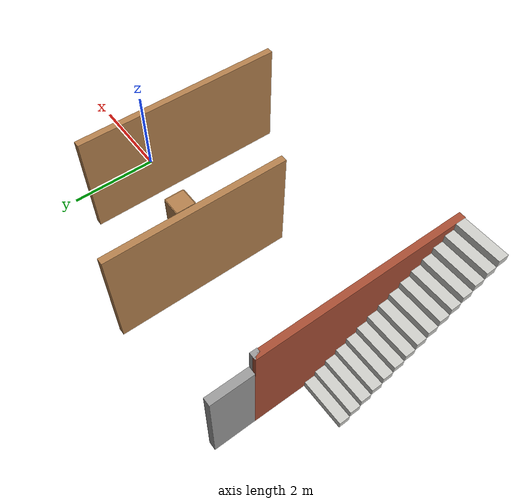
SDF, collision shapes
<sdf version="1.7">
 <model name="house1">
  <link name="Door_0">
   <pose>-6.52119 2.27125 0 0 -0 1.57228</pose>
   <visual name="Door_0_Visual">
    <pose>0 0 1 0 -0 0</pose>
    <geometry><box><size>0.9 0.17 2</size></box></geometry>
    <material>
     <script><uri>file://media/materials/scripts/gazebo.material</uri><name>Gazebo/Grey</name></script>
     <shader type="pixel"/>
    </material>
   </visual>
   <collision name="Door_0_Collision">
    <pose>0 0 1 0 -0 0</pose>
    <geometry><box><size>0.9 0.17 2</size></box></geometry>
    <surface>
     <friction>
      <ode><mu>1</mu><mu2>1</mu2><fdir1>0 0 0</fdir1><slip1>0</slip1><slip2>0</slip2></ode>
      <torsional>
       <coefficient>1</coefficient>
       <patch_radius>0</patch_radius>
       <surface_radius>0</surface_radius>
       <use_patch_radius>1</use_patch_radius>
       <ode><slip>0</slip></ode>
      </torsional>
     </friction>
     <bounce><restitution_coefficient>0</restitution_coefficient><threshold>1e+06</threshold></bounce>
     <contact>
      <collide_without_contact>0</collide_without_contact>
      <collide_without_contact_bitmask>1</collide_without_contact_bitmask>
      <collide_bitmask>1</collide_bitmask>
      <ode>
       <soft_cfm>0</soft_cfm>
       <soft_erp>0.2</soft_erp>
       <kp>1e+13</kp>
       <kd>1</kd>
       <max_vel>0.01</max_vel>
       <min_depth>0</min_depth>
      </ode>
      <bullet>
       <split_impulse>1</split_impulse>
       <split_impulse_penetration_threshold>-0.01</split_impulse_penetration_threshold>
       <soft_cfm>0</soft_cfm>
       <soft_erp>0.2</soft_erp>
       <kp>1e+13</kp>
       <kd>1</kd>
      </bullet>
     </contact>
    </surface>
   </collision>
  </link>
  <link name="Stairs_0">
   <visual name="Stairs_0_Visual_1">
    <pose>-7.11919 0.32475 0.25 0 -0 0</pose>
    <geometry><box><size>1 0.233333 0.166667</size></box></geometry>
    <material>
     <script><uri>file://media/materials/scripts/gazebo.material</uri><name>Gazebo/CeilingTiled</name></script>
     <ambient>1 1 1 1</ambient>
     <shader type="pixel"/>
    </material>
    <meta><layer>0</layer></meta>
   </visual>
   <visual name="Stairs_0_Visual_0">
    <pose>-7.11919 0.558083 0.083333 0 -0 0</pose>
    <geometry><box><size>1 0.233333 0.166667</size></box></geometry>
    <material>
     <script><uri>file://media/materials/scripts/gazebo.material</uri><name>Gazebo/CeilingTiled</name></script>
     <ambient>1 1 1 1</ambient>
     <shader type="pixel"/>
    </material>
    <meta><layer>0</layer></meta>
   </visual>
   <visual name="Stairs_0_Visual_2">
    <pose>-7.11919 0.091417 0.416667 0 -0 0</pose>
    <geometry><box><size>1 0.233333 0.166667</size></box></geometry>
    <material>
     <script><uri>file://media/materials/scripts/gazebo.material</uri><name>Gazebo/CeilingTiled</name></script>
     <ambient>1 1 1 1</ambient>
     <shader type="pixel"/>
    </material>
    <meta><layer>0</layer></meta>
   </visual>
   <visual name="Stairs_0_Visual_3">
    <pose>-7.11919 -0.141917 0.583333 0 -0 0</pose>
    <geometry><box><size>1 0.233333 0.166667</size></box></geometry>
    <material>
     <script><uri>file://media/materials/scripts/gazebo.material</uri><name>Gazebo/CeilingTiled</name></script>
     <ambient>1 1 1 1</ambient>
     <shader type="pixel"/>
    </material>
    <meta><layer>0</layer></meta>
   </visual>
   <visual name="Stairs_0_Visual_4">
    <pose>-7.11919 -0.37525 0.75 0 -0 0</pose>
    <geometry><box><size>1 0.233333 0.166667</size></box></geometry>
    <material>
     <script><uri>file://media/materials/scripts/gazebo.material</uri><name>Gazebo/CeilingTiled</name></script>
     <ambient>1 1 1 1</ambient>
     <shader type="pixel"/>
    </material>
    <meta><layer>0</layer></meta>
   </visual>
   <visual name="Stairs_0_Visual_5">
    <pose>-7.11919 -0.608583 0.916667 0 -0 0</pose>
    <geometry><box><size>1 0.233333 0.166667</size></box></geometry>
    <material>
     <script><uri>file://media/materials/scripts/gazebo.material</uri><name>Gazebo/CeilingTiled</name></script>
     <ambient>1 1 1 1</ambient>
     <shader type="pixel"/>
    </material>
    <meta><layer>0</layer></meta>
   </visual>
   <visual name="Stairs_0_Visual_6">
    <pose>-7.11919 -0.841917 1.08333 0 -0 0</pose>
    <geometry><box><size>1 0.233333 0.166667</size></box></geometry>
    <material>
     <script><uri>file://media/materials/scripts/gazebo.material</uri><name>Gazebo/CeilingTiled</name></script>
     <ambient>1 1 1 1</ambient>
     <shader type="pixel"/>
    </material>
    <meta><layer>0</layer></meta>
   </visual>
   <visual name="Stairs_0_Visual_7">
    <pose>-7.11919 -1.07525 1.25 0 -0 0</pose>
    <geometry><box><size>1 0.233333 0.166667</size></box></geometry>
    <material>
     <script><uri>file://media/materials/scripts/gazebo.material</uri><name>Gazebo/CeilingTiled</name></script>
     <ambient>1 1 1 1</ambient>
     <shader type="pixel"/>
    </material>
    <meta><layer>0</layer></meta>
   </visual>
   <visual name="Stairs_0_Visual_8">
    <pose>-7.11919 -1.30858 1.41667 0 -0 0</pose>
    <geometry><box><size>1 0.233333 0.166667</size></box></geometry>
    <material>
     <script><uri>file://media/materials/scripts/gazebo.material</uri><name>Gazebo/CeilingTiled</name></script>
     <ambient>1 1 1 1</ambient>
     <shader type="pixel"/>
    </material>
    <meta><layer>0</layer></meta>
   </visual>
   <visual name="Stairs_0_Visual_9">
    <pose>-7.11919 -1.54192 1.58333 0 -0 0</pose>
    <geometry><box><size>1 0.233333 0.166667</size></box></geometry>
    <material>
     <script><uri>file://media/materials/scripts/gazebo.material</uri><name>Gazebo/CeilingTiled</name></script>
     <ambient>1 1 1 1</ambient>
     <shader type="pixel"/>
    </material>
    <meta><layer>0</layer></meta>
   </visual>
   <visual name="Stairs_0_Visual_10">
    <pose>-7.11919 -1.77525 1.75 0 -0 0</pose>
    <geometry><box><size>1 0.233333 0.166667</size></box></geometry>
    <material>
     <script><uri>file://media/materials/scripts/gazebo.material</uri><name>Gazebo/CeilingTiled</name></script>
     <ambient>1 1 1 1</ambient>
     <shader type="pixel"/>
    </material>
    <meta><layer>0</layer></meta>
   </visual>
   <visual name="Stairs_0_Visual_11">
    <pose>-7.11919 -2.00858 1.91667 0 -0 0</pose>
    <geometry><box><size>1 0.233333 0.166667</size></box></geometry>
    <material>
     <script><uri>file://media/materials/scripts/gazebo.material</uri><name>Gazebo/CeilingTiled</name></script>
     <ambient>1 1 1 1</ambient>
     <shader type="pixel"/>
    </material>
    <meta><layer>0</layer></meta>
   </visual>
   <visual name="Stairs_0_Visual_12">
    <pose>-7.11919 -2.24192 2.08333 0 -0 0</pose>
    <geometry><box><size>1 0.233333 0.166667</size></box></geometry>
    <material>
     <script><uri>file://media/materials/scripts/gazebo.material</uri><name>Gazebo/CeilingTiled</name></script>
     <ambient>1 1 1 1</ambient>
     <shader type="pixel"/>
    </material>
    <meta><layer>0</layer></meta>
   </visual>
   <visual name="Stairs_0_Visual_13">
    <pose>-7.11919 -2.47525 2.25 0 -0 0</pose>
    <geometry><box><size>1 0.233333 0.166667</size></box></geometry>
    <material>
     <script><uri>file://media/materials/scripts/gazebo.material</uri><name>Gazebo/CeilingTiled</name></script>
     <ambient>1 1 1 1</ambient>
     <shader type="pixel"/>
    </material>
    <meta><layer>0</layer></meta>
   </visual>
   <visual name="Stairs_0_Visual_14">
    <pose>-7.11919 -2.70858 2.41667 0 -0 0</pose>
    <geometry><box><size>1 0.233333 0.166667</size></box></geometry>
    <material>
     <script><uri>file://media/materials/scripts/gazebo.material</uri><name>Gazebo/CeilingTiled</name></script>
     <ambient>1 1 1 1</ambient>
     <shader type="pixel"/>
    </material>
    <meta><layer>0</layer></meta>
   </visual>
   <collision name="Stairs_0_Collision_0">
    <pose>-7.11919 0.558083 0.083333 0 -0 0</pose>
    <geometry><box><size>1 0.233333 0.166667</size></box></geometry>
    <surface>
     <friction>
      <ode><mu>1</mu><mu2>1</mu2><fdir1>0 0 0</fdir1><slip1>0</slip1><slip2>0</slip2></ode>
      <torsional>
       <coefficient>1</coefficient>
       <patch_radius>0</patch_radius>
       <surface_radius>0</surface_radius>
       <use_patch_radius>1</use_patch_radius>
       <ode><slip>0</slip></ode>
      </torsional>
     </friction>
     <bounce><restitution_coefficient>0</restitution_coefficient><threshold>1e+06</threshold></bounce>
     <contact>
      <collide_without_contact>0</collide_without_contact>
      <collide_without_contact_bitmask>1</collide_without_contact_bitmask>
      <collide_bitmask>1</collide_bitmask>
      <ode>
       <soft_cfm>0</soft_cfm>
       <soft_erp>0.2</soft_erp>
       <kp>1e+13</kp>
       <kd>1</kd>
       <max_vel>0.01</max_vel>
       <min_depth>0</min_depth>
      </ode>
      <bullet>
       <split_impulse>1</split_impulse>
       <split_impulse_penetration_threshold>-0.01</split_impulse_penetration_threshold>
       <soft_cfm>0</soft_cfm>
       <soft_erp>0.2</soft_erp>
       <kp>1e+13</kp>
       <kd>1</kd>
      </bullet>
     </contact>
    </surface>
   </collision>
   <collision name="Stairs_0_Collision_1">
    <pose>-7.11919 0.32475 0.25 0 -0 0</pose>
    <geometry><box><size>1 0.233333 0.166667</size></box></geometry>
    <surface>
     <friction>
      <ode><mu>1</mu><mu2>1</mu2><fdir1>0 0 0</fdir1><slip1>0</slip1><slip2>0</slip2></ode>
      <torsional>
       <coefficient>1</coefficient>
       <patch_radius>0</patch_radius>
       <surface_radius>0</surface_radius>
       <use_patch_radius>1</use_patch_radius>
       <ode><slip>0</slip></ode>
      </torsional>
     </friction>
     <bounce><restitution_coefficient>0</restitution_coefficient><threshold>1e+06</threshold></bounce>
     <contact>
      <collide_without_contact>0</collide_without_contact>
      <collide_without_contact_bitmask>1</collide_without_contact_bitmask>
      <collide_bitmask>1</collide_bitmask>
      <ode>
       <soft_cfm>0</soft_cfm>
       <soft_erp>0.2</soft_erp>
       <kp>1e+13</kp>
       <kd>1</kd>
       <max_vel>0.01</max_vel>
       <min_depth>0</min_depth>
      </ode>
      <bullet>
       <split_impulse>1</split_impulse>
       <split_impulse_penetration_threshold>-0.01</split_impulse_penetration_threshold>
       <soft_cfm>0</soft_cfm>
       <soft_erp>0.2</soft_erp>
       <kp>1e+13</kp>
       <kd>1</kd>
      </bullet>
     </contact>
    </surface>
   </collision>
   <collision name="Stairs_0_Collision_2">
    <pose>-7.11919 0.091417 0.416667 0 -0 0</pose>
    <geometry><box><size>1 0.233333 0.166667</size></box></geometry>
    <surface>
     <friction>
      <ode><mu>1</mu><mu2>1</mu2><fdir1>0 0 0</fdir1><slip1>0</slip1><slip2>0</slip2></ode>
      <torsional>
       <coefficient>1</coefficient>
       <patch_radius>0</patch_radius>
       <surface_radius>0</surface_radius>
       <use_patch_radius>1</use_patch_radius>
       <ode><slip>0</slip></ode>
      </torsional>
     </friction>
     <bounce><restitution_coefficient>0</restitution_coefficient><threshold>1e+06</threshold></bounce>
     <contact>
      <collide_without_contact>0</collide_without_contact>
      <collide_without_contact_bitmask>1</collide_without_contact_bitmask>
      <collide_bitmask>1</collide_bitmask>
      <ode>
       <soft_cfm>0</soft_cfm>
       <soft_erp>0.2</soft_erp>
       <kp>1e+13</kp>
       <kd>1</kd>
       <max_vel>0.01</max_vel>
       <min_depth>0</min_depth>
      </ode>
      <bullet>
       <split_impulse>1</split_impulse>
       <split_impulse_penetration_threshold>-0.01</split_impulse_penetration_threshold>
       <soft_cfm>0</soft_cfm>
       <soft_erp>0.2</soft_erp>
       <kp>1e+13</kp>
       <kd>1</kd>
      </bullet>
     </contact>
    </surface>
   </collision>
   <collision name="Stairs_0_Collision_3">
    <pose>-7.11919 -0.141917 0.583333 0 -0 0</pose>
    <geometry><box><size>1 0.233333 0.166667</size></box></geometry>
    <surface>
     <friction>
      <ode><mu>1</mu><mu2>1</mu2><fdir1>0 0 0</fdir1><slip1>0</slip1><slip2>0</slip2></ode>
      <torsional>
       <coefficient>1</coefficient>
       <patch_radius>0</patch_radius>
       <surface_radius>0</surface_radius>
       <use_patch_radius>1</use_patch_radius>
       <ode><slip>0</slip></ode>
      </torsional>
     </friction>
     <bounce><restitution_coefficient>0</restitution_coefficient><threshold>1e+06</threshold></bounce>
     <contact>
      <collide_without_contact>0</collide_without_contact>
      <collide_without_contact_bitmask>1</collide_without_contact_bitmask>
      <collide_bitmask>1</collide_bitmask>
      <ode>
       <soft_cfm>0</soft_cfm>
       <soft_erp>0.2</soft_erp>
       <kp>1e+13</kp>
       <kd>1</kd>
       <max_vel>0.01</max_vel>
       <min_depth>0</min_depth>
      </ode>
      <bullet>
       <split_impulse>1</split_impulse>
       <split_impulse_penetration_threshold>-0.01</split_impulse_penetration_threshold>
       <soft_cfm>0</soft_cfm>
       <soft_erp>0.2</soft_erp>
       <kp>1e+13</kp>
       <kd>1</kd>
      </bullet>
     </contact>
    </surface>
   </collision>
   <collision name="Stairs_0_Collision_5">
    <pose>-7.11919 -0.608583 0.916667 0 -0 0</pose>
    <geometry><box><size>1 0.233333 0.166667</size></box></geometry>
    <surface>
     <friction>
      <ode><mu>1</mu><mu2>1</mu2><fdir1>0 0 0</fdir1><slip1>0</slip1><slip2>0</slip2></ode>
      <torsional>
       <coefficient>1</coefficient>
       <patch_radius>0</patch_radius>
       <surface_radius>0</surface_radius>
       <use_patch_radius>1</use_patch_radius>
       <ode><slip>0</slip></ode>
      </torsional>
     </friction>
     <bounce><restitution_coefficient>0</restitution_coefficient><threshold>1e+06</threshold></bounce>
     <contact>
      <collide_without_contact>0</collide_without_contact>
      <collide_without_contact_bitmask>1</collide_without_contact_bitmask>
      <collide_bitmask>1</collide_bitmask>
      <ode>
       <soft_cfm>0</soft_cfm>
       <soft_erp>0.2</soft_erp>
       <kp>1e+13</kp>
       <kd>1</kd>
       <max_vel>0.01</max_vel>
       <min_depth>0</min_depth>
      </ode>
      <bullet>
       <split_impulse>1</split_impulse>
       <split_impulse_penetration_threshold>-0.01</split_impulse_penetration_threshold>
       <soft_cfm>0</soft_cfm>
       <soft_erp>0.2</soft_erp>
       <kp>1e+13</kp>
       <kd>1</kd>
      </bullet>
     </contact>
    </surface>
   </collision>
   <collision name="Stairs_0_Collision_4">
    <pose>-7.11919 -0.37525 0.75 0 -0 0</pose>
    <geometry><box><size>1 0.233333 0.166667</size></box></geometry>
    <surface>
     <friction>
      <ode><mu>1</mu><mu2>1</mu2><fdir1>0 0 0</fdir1><slip1>0</slip1><slip2>0</slip2></ode>
      <torsional>
       <coefficient>1</coefficient>
       <patch_radius>0</patch_radius>
       <surface_radius>0</surface_radius>
       <use_patch_radius>1</use_patch_radius>
       <ode><slip>0</slip></ode>
      </torsional>
     </friction>
     <bounce><restitution_coefficient>0</restitution_coefficient><threshold>1e+06</threshold></bounce>
     <contact>
      <collide_without_contact>0</collide_without_contact>
      <collide_without_contact_bitmask>1</collide_without_contact_bitmask>
      <collide_bitmask>1</collide_bitmask>
      <ode>
       <soft_cfm>0</soft_cfm>
       <soft_erp>0.2</soft_erp>
       <kp>1e+13</kp>
       <kd>1</kd>
       <max_vel>0.01</max_vel>
       <min_depth>0</min_depth>
      </ode>
      <bullet>
       <split_impulse>1</split_impulse>
       <split_impulse_penetration_threshold>-0.01</split_impulse_penetration_threshold>
       <soft_cfm>0</soft_cfm>
       <soft_erp>0.2</soft_erp>
       <kp>1e+13</kp>
       <kd>1</kd>
      </bullet>
     </contact>
    </surface>
   </collision>
   <collision name="Stairs_0_Collision_6">
    <pose>-7.11919 -0.841917 1.08333 0 -0 0</pose>
    <geometry><box><size>1 0.233333 0.166667</size></box></geometry>
    <surface>
     <friction>
      <ode><mu>1</mu><mu2>1</mu2><fdir1>0 0 0</fdir1><slip1>0</slip1><slip2>0</slip2></ode>
      <torsional>
       <coefficient>1</coefficient>
       <patch_radius>0</patch_radius>
       <surface_radius>0</surface_radius>
       <use_patch_radius>1</use_patch_radius>
       <ode><slip>0</slip></ode>
      </torsional>
     </friction>
     <bounce><restitution_coefficient>0</restitution_coefficient><threshold>1e+06</threshold></bounce>
     <contact>
      <collide_without_contact>0</collide_without_contact>
      <collide_without_contact_bitmask>1</collide_without_contact_bitmask>
      <collide_bitmask>1</collide_bitmask>
      <ode>
       <soft_cfm>0</soft_cfm>
       <soft_erp>0.2</soft_erp>
       <kp>1e+13</kp>
       <kd>1</kd>
       <max_vel>0.01</max_vel>
       <min_depth>0</min_depth>
      </ode>
      <bullet>
       <split_impulse>1</split_impulse>
       <split_impulse_penetration_threshold>-0.01</split_impulse_penetration_threshold>
       <soft_cfm>0</soft_cfm>
       <soft_erp>0.2</soft_erp>
       <kp>1e+13</kp>
       <kd>1</kd>
      </bullet>
     </contact>
    </surface>
   </collision>
   <collision name="Stairs_0_Collision_7">
    <pose>-7.11919 -1.07525 1.25 0 -0 0</pose>
    <geometry><box><size>1 0.233333 0.166667</size></box></geometry>
    <surface>
     <friction>
      <ode><mu>1</mu><mu2>1</mu2><fdir1>0 0 0</fdir1><slip1>0</slip1><slip2>0</slip2></ode>
      <torsional>
       <coefficient>1</coefficient>
       <patch_radius>0</patch_radius>
       <surface_radius>0</surface_radius>
       <use_patch_radius>1</use_patch_radius>
       <ode><slip>0</slip></ode>
      </torsional>
     </friction>
     <bounce><restitution_coefficient>0</restitution_coefficient><threshold>1e+06</threshold></bounce>
     <contact>
      <collide_without_contact>0</collide_without_contact>
      <collide_without_contact_bitmask>1</collide_without_contact_bitmask>
      <collide_bitmask>1</collide_bitmask>
      <ode>
       <soft_cfm>0</soft_cfm>
       <soft_erp>0.2</soft_erp>
       <kp>1e+13</kp>
       <kd>1</kd>
       <max_vel>0.01</max_vel>
       <min_depth>0</min_depth>
      </ode>
      <bullet>
       <split_impulse>1</split_impulse>
       <split_impulse_penetration_threshold>-0.01</split_impulse_penetration_threshold>
       <soft_cfm>0</soft_cfm>
       <soft_erp>0.2</soft_erp>
       <kp>1e+13</kp>
       <kd>1</kd>
      </bullet>
     </contact>
    </surface>
   </collision>
   <collision name="Stairs_0_Collision_8">
    <pose>-7.11919 -1.30858 1.41667 0 -0 0</pose>
    <geometry><box><size>1 0.233333 0.166667</size></box></geometry>
    <surface>
     <friction>
      <ode><mu>1</mu><mu2>1</mu2><fdir1>0 0 0</fdir1><slip1>0</slip1><slip2>0</slip2></ode>
      <torsional>
       <coefficient>1</coefficient>
       <patch_radius>0</patch_radius>
       <surface_radius>0</surface_radius>
       <use_patch_radius>1</use_patch_radius>
       <ode><slip>0</slip></ode>
      </torsional>
     </friction>
     <bounce><restitution_coefficient>0</restitution_coefficient><threshold>1e+06</threshold></bounce>
     <contact>
      <collide_without_contact>0</collide_without_contact>
      <collide_without_contact_bitmask>1</collide_without_contact_bitmask>
      <collide_bitmask>1</collide_bitmask>
      <ode>
       <soft_cfm>0</soft_cfm>
       <soft_erp>0.2</soft_erp>
       <kp>1e+13</kp>
       <kd>1</kd>
       <max_vel>0.01</max_vel>
       <min_depth>0</min_depth>
      </ode>
      <bullet>
       <split_impulse>1</split_impulse>
       <split_impulse_penetration_threshold>-0.01</split_impulse_penetration_threshold>
       <soft_cfm>0</soft_cfm>
       <soft_erp>0.2</soft_erp>
       <kp>1e+13</kp>
       <kd>1</kd>
      </bullet>
     </contact>
    </surface>
   </collision>
   <collision name="Stairs_0_Collision_9">
    <pose>-7.11919 -1.54192 1.58333 0 -0 0</pose>
    <geometry><box><size>1 0.233333 0.166667</size></box></geometry>
    <surface>
     <friction>
      <ode><mu>1</mu><mu2>1</mu2><fdir1>0 0 0</fdir1><slip1>0</slip1><slip2>0</slip2></ode>
      <torsional>
       <coefficient>1</coefficient>
       <patch_radius>0</patch_radius>
       <surface_radius>0</surface_radius>
       <use_patch_radius>1</use_patch_radius>
       <ode><slip>0</slip></ode>
      </torsional>
     </friction>
     <bounce><restitution_coefficient>0</restitution_coefficient><threshold>1e+06</threshold></bounce>
     <contact>
      <collide_without_contact>0</collide_without_contact>
      <collide_without_contact_bitmask>1</collide_without_contact_bitmask>
      <collide_bitmask>1</collide_bitmask>
      <ode>
       <soft_cfm>0</soft_cfm>
       <soft_erp>0.2</soft_erp>
       <kp>1e+13</kp>
       <kd>1</kd>
       <max_vel>0.01</max_vel>
       <min_depth>0</min_depth>
      </ode>
      <bullet>
       <split_impulse>1</split_impulse>
       <split_impulse_penetration_threshold>-0.01</split_impulse_penetration_threshold>
       <soft_cfm>0</soft_cfm>
       <soft_erp>0.2</soft_erp>
       <kp>1e+13</kp>
       <kd>1</kd>
      </bullet>
     </contact>
    </surface>
   </collision>
   <collision name="Stairs_0_Collision_10">
    <pose>-7.11919 -1.77525 1.75 0 -0 0</pose>
    <geometry><box><size>1 0.233333 0.166667</size></box></geometry>
    <surface>
     <friction>
      <ode><mu>1</mu><mu2>1</mu2><fdir1>0 0 0</fdir1><slip1>0</slip1><slip2>0</slip2></ode>
      <torsional>
       <coefficient>1</coefficient>
       <patch_radius>0</patch_radius>
       <surface_radius>0</surface_radius>
       <use_patch_radius>1</use_patch_radius>
       <ode><slip>0</slip></ode>
      </torsional>
     </friction>
     <bounce><restitution_coefficient>0</restitution_coefficient><threshold>1e+06</threshold></bounce>
     <contact>
      <collide_without_contact>0</collide_without_contact>
      <collide_without_contact_bitmask>1</collide_without_contact_bitmask>
      <collide_bitmask>1</collide_bitmask>
      <ode>
       <soft_cfm>0</soft_cfm>
       <soft_erp>0.2</soft_erp>
       <kp>1e+13</kp>
       <kd>1</kd>
       <max_vel>0.01</max_vel>
       <min_depth>0</min_depth>
      </ode>
      <bullet>
       <split_impulse>1</split_impulse>
       <split_impulse_penetration_threshold>-0.01</split_impulse_penetration_threshold>
       <soft_cfm>0</soft_cfm>
       <soft_erp>0.2</soft_erp>
       <kp>1e+13</kp>
       <kd>1</kd>
      </bullet>
     </contact>
    </surface>
   </collision>
   <collision name="Stairs_0_Collision_11">
    <pose>-7.11919 -2.00858 1.91667 0 -0 0</pose>
    <geometry><box><size>1 0.233333 0.166667</size></box></geometry>
    <surface>
     <friction>
      <ode><mu>1</mu><mu2>1</mu2><fdir1>0 0 0</fdir1><slip1>0</slip1><slip2>0</slip2></ode>
      <torsional>
       <coefficient>1</coefficient>
       <patch_radius>0</patch_radius>
       <surface_radius>0</surface_radius>
       <use_patch_radius>1</use_patch_radius>
       <ode><slip>0</slip></ode>
      </torsional>
     </friction>
     <bounce><restitution_coefficient>0</restitution_coefficient><threshold>1e+06</threshold></bounce>
     <contact>
      <collide_without_contact>0</collide_without_contact>
      <collide_without_contact_bitmask>1</collide_without_contact_bitmask>
      <collide_bitmask>1</collide_bitmask>
      <ode>
       <soft_cfm>0</soft_cfm>
       <soft_erp>0.2</soft_erp>
       <kp>1e+13</kp>
       <kd>1</kd>
       <max_vel>0.01</max_vel>
       <min_depth>0</min_depth>
      </ode>
      <bullet>
       <split_impulse>1</split_impulse>
       <split_impulse_penetration_threshold>-0.01</split_impulse_penetration_threshold>
       <soft_cfm>0</soft_cfm>
       <soft_erp>0.2</soft_erp>
       <kp>1e+13</kp>
       <kd>1</kd>
      </bullet>
     </contact>
    </surface>
   </collision>
   <collision name="Stairs_0_Collision_13">
    <pose>-7.11919 -2.47525 2.25 0 -0 0</pose>
    <geometry><box><size>1 0.233333 0.166667</size></box></geometry>
    <surface>
     <friction>
      <ode><mu>1</mu><mu2>1</mu2><fdir1>0 0 0</fdir1><slip1>0</slip1><slip2>0</slip2></ode>
      <torsional>
       <coefficient>1</coefficient>
       <patch_radius>0</patch_radius>
       <surface_radius>0</surface_radius>
       <use_patch_radius>1</use_patch_radius>
       <ode><slip>0</slip></ode>
      </torsional>
     </friction>
     <bounce><restitution_coefficient>0</restitution_coefficient><threshold>1e+06</threshold></bounce>
     <contact>
      <collide_without_contact>0</collide_without_contact>
      <collide_without_contact_bitmask>1</collide_without_contact_bitmask>
      <collide_bitmask>1</collide_bitmask>
      <ode>
       <soft_cfm>0</soft_cfm>
       <soft_erp>0.2</soft_erp>
       <kp>1e+13</kp>
       <kd>1</kd>
       <max_vel>0.01</max_vel>
       <min_depth>0</min_depth>
      </ode>
      <bullet>
       <split_impulse>1</split_impulse>
       <split_impulse_penetration_threshold>-0.01</split_impulse_penetration_threshold>
       <soft_cfm>0</soft_cfm>
       <soft_erp>0.2</soft_erp>
       <kp>1e+13</kp>
       <kd>1</kd>
      </bullet>
     </contact>
    </surface>
   </collision>
   <collision name="Stairs_0_Collision_12">
    <pose>-7.11919 -2.24192 2.08333 0 -0 0</pose>
    <geometry><box><size>1 0.233333 0.166667</size></box></geometry>
    <surface>
     <friction>
      <ode><mu>1</mu><mu2>1</mu2><fdir1>0 0 0</fdir1><slip1>0</slip1><slip2>0</slip2></ode>
      <torsional>
       <coefficient>1</coefficient>
       <patch_radius>0</patch_radius>
       <surface_radius>0</surface_radius>
       <use_patch_radius>1</use_patch_radius>
       <ode><slip>0</slip></ode>
      </torsional>
     </friction>
     <bounce><restitution_coefficient>0</restitution_coefficient><threshold>1e+06</threshold></bounce>
     <contact>
      <collide_without_contact>0</collide_without_contact>
      <collide_without_contact_bitmask>1</collide_without_contact_bitmask>
      <collide_bitmask>1</collide_bitmask>
      <ode>
       <soft_cfm>0</soft_cfm>
       <soft_erp>0.2</soft_erp>
       <kp>1e+13</kp>
       <kd>1</kd>
       <max_vel>0.01</max_vel>
       <min_depth>0</min_depth>
      </ode>
      <bullet>
       <split_impulse>1</split_impulse>
       <split_impulse_penetration_threshold>-0.01</split_impulse_penetration_threshold>
       <soft_cfm>0</soft_cfm>
       <soft_erp>0.2</soft_erp>
       <kp>1e+13</kp>
       <kd>1</kd>
      </bullet>
     </contact>
    </surface>
   </collision>
   <collision name="Stairs_0_Collision_14">
    <pose>-7.11919 -2.70858 2.41667 0 -0 0</pose>
    <geometry><box><size>1 0.233333 0.166667</size></box></geometry>
    <surface>
     <friction>
      <ode><mu>1</mu><mu2>1</mu2><fdir1>0 0 0</fdir1><slip1>0</slip1><slip2>0</slip2></ode>
      <torsional>
       <coefficient>1</coefficient>
       <patch_radius>0</patch_radius>
       <surface_radius>0</surface_radius>
       <use_patch_radius>1</use_patch_radius>
       <ode><slip>0</slip></ode>
      </torsional>
     </friction>
     <bounce><restitution_coefficient>0</restitution_coefficient><threshold>1e+06</threshold></bounce>
     <contact>
      <collide_without_contact>0</collide_without_contact>
      <collide_without_contact_bitmask>1</collide_without_contact_bitmask>
      <collide_bitmask>1</collide_bitmask>
      <ode>
       <soft_cfm>0</soft_cfm>
       <soft_erp>0.2</soft_erp>
       <kp>1e+13</kp>
       <kd>1</kd>
       <max_vel>0.01</max_vel>
       <min_depth>0</min_depth>
      </ode>
      <bullet>
       <split_impulse>1</split_impulse>
       <split_impulse_penetration_threshold>-0.01</split_impulse_penetration_threshold>
       <soft_cfm>0</soft_cfm>
       <soft_erp>0.2</soft_erp>
       <kp>1e+13</kp>
       <kd>1</kd>
      </bullet>
     </contact>
    </surface>
   </collision>
  </link>
  <link name="Wall_0">
   <pose>-6.53844 -0.5075 0 0 0 -1.57334</pose>
   <visual name="Wall_0_Visual">
    <pose>0 0 1.25 0 -0 0</pose>
    <geometry><box><size>4.6725 0.15 2.5</size></box></geometry>
    <material>
     <script><uri>file://media/materials/scripts/gazebo.material</uri><name>Gazebo/Bricks</name></script>
     <ambient>1 1 1 1</ambient>
     <shader type="pixel"/>
    </material>
    <meta><layer>0</layer></meta>
   </visual>
   <collision name="Wall_0_Collision">
    <pose>0 0 1.25 0 -0 0</pose>
    <geometry><box><size>4.6725 0.15 2.5</size></box></geometry>
    <surface>
     <friction>
      <ode><mu>1</mu><mu2>1</mu2><fdir1>0 0 0</fdir1><slip1>0</slip1><slip2>0</slip2></ode>
      <torsional>
       <coefficient>1</coefficient>
       <patch_radius>0</patch_radius>
       <surface_radius>0</surface_radius>
       <use_patch_radius>1</use_patch_radius>
       <ode><slip>0</slip></ode>
      </torsional>
     </friction>
     <bounce><restitution_coefficient>0</restitution_coefficient><threshold>1e+06</threshold></bounce>
     <contact>
      <collide_without_contact>0</collide_without_contact>
      <collide_without_contact_bitmask>1</collide_without_contact_bitmask>
      <collide_bitmask>1</collide_bitmask>
      <ode>
       <soft_cfm>0</soft_cfm>
       <soft_erp>0.2</soft_erp>
       <kp>1e+13</kp>
       <kd>1</kd>
       <max_vel>0.01</max_vel>
       <min_depth>0</min_depth>
      </ode>
      <bullet>
       <split_impulse>1</split_impulse>
       <split_impulse_penetration_threshold>-0.01</split_impulse_penetration_threshold>
       <soft_cfm>0</soft_cfm>
       <soft_erp>0.2</soft_erp>
       <kp>1e+13</kp>
       <kd>1</kd>
      </bullet>
     </contact>
    </surface>
   </collision>
  </link>
  <link name="Wall_5">
   <pose>-6.52119 1.75375 0 0 -0 0</pose>
   <visual name="Wall_5_Visual">
    <pose>0 0 1.25 0 -0 0</pose>
    <geometry><box><size>0.15 0.15 2.5</size></box></geometry>
    <material>
     <script><uri>file://media/materials/scripts/gazebo.material</uri><name>Gazebo/Grey</name></script>
     <ambient>1 1 1 1</ambient>
     <shader type="pixel"/>
    </material>
    <meta><layer>0</layer></meta>
   </visual>
   <collision name="Wall_5_Collision">
    <pose>0 0 1.25 0 -0 0</pose>
    <geometry><box><size>0.15 0.15 2.5</size></box></geometry>
    <surface>
     <friction>
      <ode><mu>1</mu><mu2>1</mu2><fdir1>0 0 0</fdir1><slip1>0</slip1><slip2>0</slip2></ode>
      <torsional>
       <coefficient>1</coefficient>
       <patch_radius>0</patch_radius>
       <surface_radius>0</surface_radius>
       <use_patch_radius>1</use_patch_radius>
       <ode><slip>0</slip></ode>
      </torsional>
     </friction>
     <bounce><restitution_coefficient>0</restitution_coefficient><threshold>1e+06</threshold></bounce>
     <contact>
      <collide_without_contact>0</collide_without_contact>
      <collide_without_contact_bitmask>1</collide_without_contact_bitmask>
      <collide_bitmask>1</collide_bitmask>
      <ode>
       <soft_cfm>0</soft_cfm>
       <soft_erp>0.2</soft_erp>
       <kp>1e+13</kp>
       <kd>1</kd>
       <max_vel>0.01</max_vel>
       <min_depth>0</min_depth>
      </ode>
      <bullet>
       <split_impulse>1</split_impulse>
       <split_impulse_penetration_threshold>-0.01</split_impulse_penetration_threshold>
       <soft_cfm>0</soft_cfm>
       <soft_erp>0.2</soft_erp>
       <kp>1e+13</kp>
       <kd>1</kd>
      </bullet>
     </contact>
    </surface>
   </collision>
  </link>
  <link name="Wall_7">
   <pose>-3.55419 0.86375 0 0 0 -1.5708</pose>
   <visual name="Wall_7_Visual">
    <pose>0 0 1.25 0 -0 0</pose>
    <geometry><box><size>4 0.15 2.5</size></box></geometry>
    <material>
     <script><uri>file://media/materials/scripts/gazebo.material</uri><name>Gazebo/Wood</name></script>
     <ambient>1 1 1 1</ambient>
     <shader type="pixel"/>
    </material>
    <meta><layer>0</layer></meta>
   </visual>
   <collision name="Wall_7_Collision">
    <pose>0 0 1.25 0 -0 0</pose>
    <geometry><box><size>4 0.15 2.5</size></box></geometry>
    <surface>
     <friction>
      <ode><mu>1</mu><mu2>1</mu2><fdir1>0 0 0</fdir1><slip1>0</slip1><slip2>0</slip2></ode>
      <torsional>
       <coefficient>1</coefficient>
       <patch_radius>0</patch_radius>
       <surface_radius>0</surface_radius>
       <use_patch_radius>1</use_patch_radius>
       <ode><slip>0</slip></ode>
      </torsional>
     </friction>
     <bounce><restitution_coefficient>0</restitution_coefficient><threshold>1e+06</threshold></bounce>
     <contact>
      <collide_without_contact>0</collide_without_contact>
      <collide_without_contact_bitmask>1</collide_without_contact_bitmask>
      <collide_bitmask>1</collide_bitmask>
      <ode>
       <soft_cfm>0</soft_cfm>
       <soft_erp>0.2</soft_erp>
       <kp>1e+13</kp>
       <kd>1</kd>
       <max_vel>0.01</max_vel>
       <min_depth>0</min_depth>
      </ode>
      <bullet>
       <split_impulse>1</split_impulse>
       <split_impulse_penetration_threshold>-0.01</split_impulse_penetration_threshold>
       <soft_cfm>0</soft_cfm>
       <soft_erp>0.2</soft_erp>
       <kp>1e+13</kp>
       <kd>1</kd>
      </bullet>
     </contact>
    </surface>
   </collision>
  </link>
  <link name="Wall_9">
   <pose>-0.863193 -0.48875 0 0 -0 1.5708</pose>
   <visual name="Wall_9_Visual">
    <pose>0 0 1.25 0 -0 0</pose>
    <geometry><box><size>4.75 0.15 2.5</size></box></geometry>
    <material>
     <script><uri>file://media/materials/scripts/gazebo.material</uri><name>Gazebo/Wood</name></script>
     <ambient>1 1 1 1</ambient>
     <shader type="pixel"/>
    </material>
    <meta><layer>0</layer></meta>
   </visual>
   <collision name="Wall_9_Collision">
    <pose>0 0 1.25 0 -0 0</pose>
    <geometry><box><size>4.75 0.15 2.5</size></box></geometry>
    <surface>
     <friction>
      <ode><mu>1</mu><mu2>1</mu2><fdir1>0 0 0</fdir1><slip1>0</slip1><slip2>0</slip2></ode>
      <torsional>
       <coefficient>1</coefficient>
       <patch_radius>0</patch_radius>
       <surface_radius>0</surface_radius>
       <use_patch_radius>1</use_patch_radius>
       <ode><slip>0</slip></ode>
      </torsional>
     </friction>
     <bounce><restitution_coefficient>0</restitution_coefficient><threshold>1e+06</threshold></bounce>
     <contact>
      <collide_without_contact>0</collide_without_contact>
      <collide_without_contact_bitmask>1</collide_without_contact_bitmask>
      <collide_bitmask>1</collide_bitmask>
      <ode>
       <soft_cfm>0</soft_cfm>
       <soft_erp>0.2</soft_erp>
       <kp>1e+13</kp>
       <kd>1</kd>
       <max_vel>0.01</max_vel>
       <min_depth>0</min_depth>
      </ode>
      <bullet>
       <split_impulse>1</split_impulse>
       <split_impulse_penetration_threshold>-0.01</split_impulse_penetration_threshold>
       <soft_cfm>0</soft_cfm>
       <soft_erp>0.2</soft_erp>
       <kp>1e+13</kp>
       <kd>1</kd>
      </bullet>
     </contact>
    </surface>
   </collision>
  </link>
  <model name="cabinet">
   <static>1</static>
   <link name="cabinet_bottom_plate">
    <inertial>
     <pose>0 0 -1 0 -0 0</pose>
     <inertia><ixx>2.05</ixx><ixy>0</ixy><ixz>0</ixz><iyy>2.05</iyy><iyz>0</iyz><izz>2.05</izz></inertia>
     <mass>25</mass>
    </inertial>
    <collision name="cabinet_bottom_plate_geom">
     <pose>0 0 0.01 0 -0 0</pose>
     <geometry><box><size>0.45 0.45 0.02</size></box></geometry>
    </collision>
    <visual name="cabinet_bottom_plate_geom_visual">
     <pose>0 0 0.01 0 -0 0</pose>
     <geometry><box><size>0.45 0.45 0.02</size></box></geometry>
     <material>
      <script><uri>file://media/materials/scripts/gazebo.material</uri><name>Gazebo/Wood</name></script>
     </material>
    </visual>
    <collision name="cabinet_bottom_plate_geom_cabinet_back_plate">
     <pose>0.235 0 0.51 0 -0 0</pose>
     <geometry><box><size>0.02 0.45 1.02</size></box></geometry>
    </collision>
    <visual name="cabinet_bottom_plate_geom_cabinet_back_plate_visual">
     <pose>0.235 0 0.51 0 -0 0</pose>
     <geometry><box><size>0.02 0.45 1.02</size></box></geometry>
     <material>
      <script><uri>file://media/materials/scripts/gazebo.material</uri><name>Gazebo/Wood</name></script>
     </material>
    </visual>
    <collision name="cabinet_bottom_plate_geom_cabinet_left_plate">
     <pose>0 0.235 0.51 0 -0 0</pose>
     <geometry><box><size>0.45 0.02 1.02</size></box></geometry>
    </collision>
    <visual name="cabinet_bottom_plate_geom_cabinet_left_plate_visual">
     <pose>0 0.235 0.51 0 -0 0</pose>
     <geometry><box><size>0.45 0.02 1.02</size></box></geometry>
     <material>
      <script><uri>file://media/materials/scripts/gazebo.material</uri><name>Gazebo/Wood</name></script>
     </material>
    </visual>
    <collision name="cabinet_bottom_plate_geom_cabinet_middle_plate">
     <pose>0 0 0.51 0 -0 0</pose>
     <geometry><box><size>0.45 0.45 0.02</size></box></geometry>
    </collision>
    <visual name="cabinet_bottom_plate_geom_cabinet_middle_plate_visual">
     <pose>0 0 0.51 0 -0 0</pose>
     <geometry><box><size>0.45 0.45 0.02</size></box></geometry>
     <material>
      <script><uri>file://media/materials/scripts/gazebo.material</uri><name>Gazebo/Wood</name></script>
     </material>
    </visual>
    <collision name="cabinet_bottom_plate_geom_cabinet_right_plate">
     <pose>0 -0.235 0.51 0 -0 0</pose>
     <geometry><box><size>0.45 0.02 1.02</size></box></geometry>
    </collision>
    <visual name="cabinet_bottom_plate_geom_cabinet_right_plate_visual">
     <pose>0 -0.235 0.51 0 -0 0</pose>
     <geometry><box><size>0.45 0.02 1.02</size></box></geometry>
     <material>
      <script><uri>file://media/materials/scripts/gazebo.material</uri><name>Gazebo/Wood</name></script>
     </material>
    </visual>
    <collision name="cabinet_bottom_plate_geom_cabinet_top_plate">
     <pose>0 0 1.01 0 -0 0</pose>
     <geometry><box><size>0.45 0.45 0.02</size></box></geometry>
    </collision>
    <visual name="cabinet_bottom_plate_geom_cabinet_top_plate_visual">
     <pose>0 0 1.01 0 -0 0</pose>
     <geometry><box><size>0.45 0.45 0.02</size></box></geometry>
     <material>
      <script><uri>file://media/materials/scripts/gazebo.material</uri><name>Gazebo/Wood</name></script>
     </material>
    </visual>
   </link>
   <pose>-2.1879 0.490394 0 0 -0 0</pose>
  </model>
  <static>1</static>
 </model>
</sdf>
